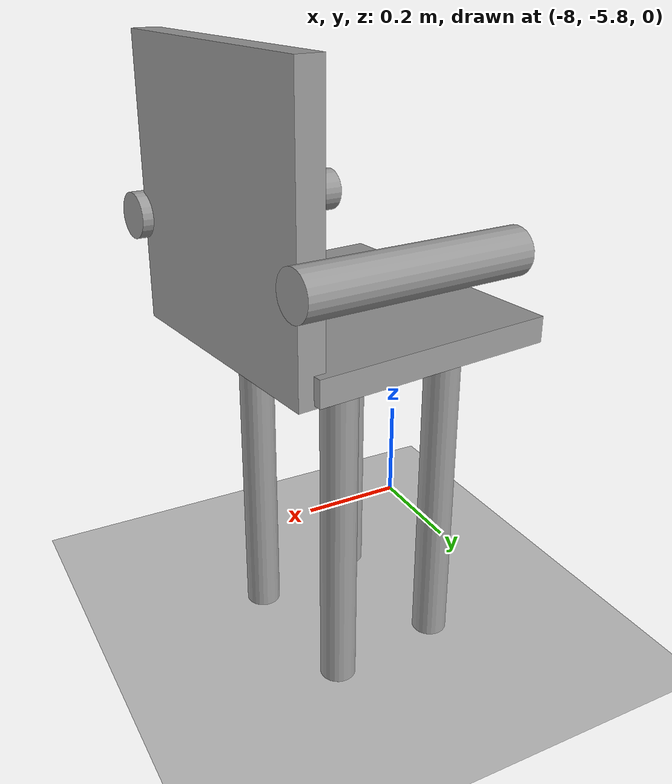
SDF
<sdf version="1.6">
 <world name="default">
  <model name="ground_plane">
   <static>1</static>
   <link name="link">
    <collision name="collision">
     <geometry><plane><normal>0 0 1</normal><size>100 100</size></plane></geometry>
     <surface>
      <contact><collide_bitmask>65535</collide_bitmask></contact>
      <friction><ode><mu>100</mu><mu2>50</mu2></ode></friction>
     </surface>
    </collision>
    <visual name="visual">
     <cast_shadows>0</cast_shadows>
     <geometry><plane><normal>0 0 1</normal><size>100 100</size></plane></geometry>
     <material>
      <script><uri>file://media/materials/scripts/gazebo.material</uri><name>Gazebo/Grey</name></script>
     </material>
    </visual>
   </link>
  </model>
  <model name="chair_clone_1_clone">
   <link name="link_4">
    <inertial>
     <mass>0.00194051</mass>
     <inertia>
      <ixx>5.14044e-05</ixx>
      <ixy>0</ixy>
      <ixz>0</ixz>
      <iyy>5.14044e-05</iyy>
      <iyz>0</iyz>
      <izz>8.34973e-07</izz>
     </inertia>
    </inertial>
    <pose>-0.140129 -0.127166 -0.209129 0 -0 0</pose>
    <visual name="visual">
     <geometry><cylinder><radius>0.0293355</radius><length>0.561516</length></cylinder></geometry>
     <material>
      <lighting>1</lighting>
      <script><uri>file://media/materials/scripts/gazebo.material</uri><name>Gazebo/Grey</name></script>
      <emissive>0 0 0 1</emissive>
     </material>
    </visual>
    <collision name="collision">
     <geometry><cylinder><radius>0.029336</radius><length>0.561516</length></cylinder></geometry>
     <surface>
      <friction>
       <ode><mu>1</mu><mu2>1</mu2><fdir1>0 0 0</fdir1><slip1>0</slip1><slip2>0</slip2></ode>
       <torsional>
        <coefficient>1</coefficient>
        <patch_radius>0</patch_radius>
        <surface_radius>0</surface_radius>
        <use_patch_radius>1</use_patch_radius>
        <ode><slip>0</slip></ode>
       </torsional>
      </friction>
      <bounce><restitution_coefficient>0</restitution_coefficient><threshold>1e+06</threshold></bounce>
      <contact>
       <collide_without_contact>0</collide_without_contact>
       <collide_without_contact_bitmask>1</collide_without_contact_bitmask>
       <collide_bitmask>1</collide_bitmask>
       <ode>
        <soft_cfm>0</soft_cfm>
        <soft_erp>0.2</soft_erp>
        <kp>1e+13</kp>
        <kd>1</kd>
        <max_vel>0.01</max_vel>
        <min_depth>0</min_depth>
       </ode>
       <bullet>
        <split_impulse>1</split_impulse>
        <split_impulse_penetration_threshold>-0.01</split_impulse_penetration_threshold>
        <soft_cfm>0</soft_cfm>
        <soft_erp>0.2</soft_erp>
        <kp>1e+13</kp>
        <kd>1</kd>
       </bullet>
      </contact>
     </surface>
    </collision>
   </link>
   <link name="link_4_clone">
    <inertial>
     <mass>0.00194051</mass>
     <inertia>
      <ixx>5.14044e-05</ixx>
      <ixy>0</ixy>
      <ixz>0</ixz>
      <iyy>5.14044e-05</iyy>
      <iyz>0</iyz>
      <izz>8.34973e-07</izz>
     </inertia>
    </inertial>
    <pose>-0.139565 0.126187 -0.209129 0 -0 0</pose>
    <visual name="visual">
     <geometry><cylinder><radius>0.0293355</radius><length>0.561516</length></cylinder></geometry>
     <material>
      <lighting>1</lighting>
      <script><uri>file://media/materials/scripts/gazebo.material</uri><name>Gazebo/Grey</name></script>
      <shader type="pixel"/>
      <emissive>0 0 0 1</emissive>
     </material>
    </visual>
    <collision name="collision">
     <geometry><cylinder><radius>0.029336</radius><length>0.561516</length></cylinder></geometry>
     <surface>
      <friction>
       <ode><mu>1</mu><mu2>1</mu2><fdir1>0 0 0</fdir1><slip1>0</slip1><slip2>0</slip2></ode>
       <torsional>
        <coefficient>1</coefficient>
        <patch_radius>0</patch_radius>
        <surface_radius>0</surface_radius>
        <use_patch_radius>1</use_patch_radius>
        <ode><slip>0</slip></ode>
       </torsional>
      </friction>
      <bounce><restitution_coefficient>0</restitution_coefficient><threshold>1e+06</threshold></bounce>
      <contact>
       <collide_without_contact>0</collide_without_contact>
       <collide_without_contact_bitmask>1</collide_without_contact_bitmask>
       <collide_bitmask>1</collide_bitmask>
       <ode>
        <soft_cfm>0</soft_cfm>
        <soft_erp>0.2</soft_erp>
        <kp>1e+13</kp>
        <kd>1</kd>
        <max_vel>0.01</max_vel>
        <min_depth>0</min_depth>
       </ode>
       <bullet>
        <split_impulse>1</split_impulse>
        <split_impulse_penetration_threshold>-0.01</split_impulse_penetration_threshold>
        <soft_cfm>0</soft_cfm>
        <soft_erp>0.2</soft_erp>
        <kp>1e+13</kp>
        <kd>1</kd>
       </bullet>
      </contact>
     </surface>
    </collision>
   </link>
   <link name="link_4_clone_0">
    <inertial>
     <mass>0.00194051</mass>
     <inertia>
      <ixx>5.14044e-05</ixx>
      <ixy>0</ixy>
      <ixz>0</ixz>
      <iyy>5.14044e-05</iyy>
      <iyz>0</iyz>
      <izz>8.34973e-07</izz>
     </inertia>
    </inertial>
    <pose>0.062929 0.13105 -0.209129 0 -0 0</pose>
    <visual name="visual">
     <geometry><cylinder><radius>0.0293355</radius><length>0.561516</length></cylinder></geometry>
     <material>
      <lighting>1</lighting>
      <script><uri>file://media/materials/scripts/gazebo.material</uri><name>Gazebo/Grey</name></script>
      <shader type="pixel"/>
      <emissive>0 0 0 1</emissive>
     </material>
    </visual>
    <collision name="collision">
     <geometry><cylinder><radius>0.029336</radius><length>0.561516</length></cylinder></geometry>
     <surface>
      <friction>
       <ode><mu>1</mu><mu2>1</mu2><fdir1>0 0 0</fdir1><slip1>0</slip1><slip2>0</slip2></ode>
       <torsional>
        <coefficient>1</coefficient>
        <patch_radius>0</patch_radius>
        <surface_radius>0</surface_radius>
        <use_patch_radius>1</use_patch_radius>
        <ode><slip>0</slip></ode>
       </torsional>
      </friction>
      <bounce><restitution_coefficient>0</restitution_coefficient><threshold>1e+06</threshold></bounce>
      <contact>
       <collide_without_contact>0</collide_without_contact>
       <collide_without_contact_bitmask>1</collide_without_contact_bitmask>
       <collide_bitmask>1</collide_bitmask>
       <ode>
        <soft_cfm>0</soft_cfm>
        <soft_erp>0.2</soft_erp>
        <kp>1e+13</kp>
        <kd>1</kd>
        <max_vel>0.01</max_vel>
        <min_depth>0</min_depth>
       </ode>
       <bullet>
        <split_impulse>1</split_impulse>
        <split_impulse_penetration_threshold>-0.01</split_impulse_penetration_threshold>
        <soft_cfm>0</soft_cfm>
        <soft_erp>0.2</soft_erp>
        <kp>1e+13</kp>
        <kd>1</kd>
       </bullet>
      </contact>
     </surface>
    </collision>
   </link>
   <link name="link_4_clone_1">
    <inertial>
     <mass>0.00194051</mass>
     <inertia>
      <ixx>5.14044e-05</ixx>
      <ixy>0</ixy>
      <ixz>0</ixz>
      <iyy>5.14044e-05</iyy>
      <iyz>0</iyz>
      <izz>8.34973e-07</izz>
     </inertia>
    </inertial>
    <pose>0.061641 -0.111934 -0.209129 0 -0 0</pose>
    <visual name="visual">
     <geometry><cylinder><radius>0.0293355</radius><length>0.561516</length></cylinder></geometry>
     <material>
      <lighting>1</lighting>
      <script><uri>file://media/materials/scripts/gazebo.material</uri><name>Gazebo/Grey</name></script>
      <shader type="pixel"/>
      <emissive>0 0 0 1</emissive>
     </material>
    </visual>
    <collision name="collision">
     <geometry><cylinder><radius>0.029336</radius><length>0.561516</length></cylinder></geometry>
     <surface>
      <friction>
       <ode><mu>1</mu><mu2>1</mu2><fdir1>0 0 0</fdir1><slip1>0</slip1><slip2>0</slip2></ode>
       <torsional>
        <coefficient>1</coefficient>
        <patch_radius>0</patch_radius>
        <surface_radius>0</surface_radius>
        <use_patch_radius>1</use_patch_radius>
        <ode><slip>0</slip></ode>
       </torsional>
      </friction>
      <bounce><restitution_coefficient>0</restitution_coefficient><threshold>1e+06</threshold></bounce>
      <contact>
       <collide_without_contact>0</collide_without_contact>
       <collide_without_contact_bitmask>1</collide_without_contact_bitmask>
       <collide_bitmask>1</collide_bitmask>
       <ode>
        <soft_cfm>0</soft_cfm>
        <soft_erp>0.2</soft_erp>
        <kp>1e+13</kp>
        <kd>1</kd>
        <max_vel>0.01</max_vel>
        <min_depth>0</min_depth>
       </ode>
       <bullet>
        <split_impulse>1</split_impulse>
        <split_impulse_penetration_threshold>-0.01</split_impulse_penetration_threshold>
        <soft_cfm>0</soft_cfm>
        <soft_erp>0.2</soft_erp>
        <kp>1e+13</kp>
        <kd>1</kd>
       </bullet>
      </contact>
     </surface>
    </collision>
   </link>
   <link name="link_5">
    <inertial>
     <mass>0.00816884</mass>
     <inertia>
      <ixx>0.00015002</ixx>
      <ixy>0</ixy>
      <ixz>0</ixz>
      <iyy>0.000115328</iyy>
      <iyz>0</iyz>
      <izz>0.000262862</izz>
     </inertia>
    </inertial>
    <pose>-0.041662 -0.005028 0.089077 0 -0 0</pose>
    <visual name="visual">
     <geometry><box><size>0.409378 0.467496 0.042729</size></box></geometry>
     <material>
      <lighting>1</lighting>
      <script><uri>file://media/materials/scripts/gazebo.material</uri><name>Gazebo/Grey</name></script>
      <emissive>0 0 0 1</emissive>
     </material>
    </visual>
    <collision name="collision">
     <geometry><box><size>0.409378 0.467496 0.042729</size></box></geometry>
     <surface>
      <friction>
       <ode><mu>1</mu><mu2>1</mu2><fdir1>0 0 0</fdir1><slip1>0</slip1><slip2>0</slip2></ode>
       <torsional>
        <coefficient>1</coefficient>
        <patch_radius>0</patch_radius>
        <surface_radius>0</surface_radius>
        <use_patch_radius>1</use_patch_radius>
        <ode><slip>0</slip></ode>
       </torsional>
      </friction>
      <bounce><restitution_coefficient>0</restitution_coefficient><threshold>1e+06</threshold></bounce>
      <contact>
       <collide_without_contact>0</collide_without_contact>
       <collide_without_contact_bitmask>1</collide_without_contact_bitmask>
       <collide_bitmask>1</collide_bitmask>
       <ode>
        <soft_cfm>0</soft_cfm>
        <soft_erp>0.2</soft_erp>
        <kp>1e+13</kp>
        <kd>1</kd>
        <max_vel>0.01</max_vel>
        <min_depth>0</min_depth>
       </ode>
       <bullet>
        <split_impulse>1</split_impulse>
        <split_impulse_penetration_threshold>-0.01</split_impulse_penetration_threshold>
        <soft_cfm>0</soft_cfm>
        <soft_erp>0.2</soft_erp>
        <kp>1e+13</kp>
        <kd>1</kd>
       </bullet>
      </contact>
     </surface>
    </collision>
   </link>
   <link name="link_6">
    <inertial>
     <mass>0.00855687</mass>
     <inertia>
      <ixx>0.000285159</ixx>
      <ixy>0</ixy>
      <ixz>0</ixz>
      <iyy>0.000146983</iyy>
      <iyz>0</iyz>
      <izz>0.000140925</izz>
     </inertia>
    </inertial>
    <pose>0.165697 -0.006458 0.287866 0 -0 0</pose>
    <visual name="visual">
     <geometry><box><size>0.0439 0.442383 0.451884</size></box></geometry>
     <material>
      <lighting>1</lighting>
      <script><uri>file://media/materials/scripts/gazebo.material</uri><name>Gazebo/Grey</name></script>
      <emissive>0 0 0 1</emissive>
     </material>
    </visual>
    <collision name="collision">
     <geometry><box><size>0.0439 0.442383 0.451884</size></box></geometry>
     <surface>
      <friction>
       <ode><mu>1</mu><mu2>1</mu2><fdir1>0 0 0</fdir1><slip1>0</slip1><slip2>0</slip2></ode>
       <torsional>
        <coefficient>1</coefficient>
        <patch_radius>0</patch_radius>
        <surface_radius>0</surface_radius>
        <use_patch_radius>1</use_patch_radius>
        <ode><slip>0</slip></ode>
       </torsional>
      </friction>
      <bounce><restitution_coefficient>0</restitution_coefficient><threshold>1e+06</threshold></bounce>
      <contact>
       <collide_without_contact>0</collide_without_contact>
       <collide_without_contact_bitmask>1</collide_without_contact_bitmask>
       <collide_bitmask>1</collide_bitmask>
       <ode>
        <soft_cfm>0</soft_cfm>
        <soft_erp>0.2</soft_erp>
        <kp>1e+13</kp>
        <kd>1</kd>
        <max_vel>0.01</max_vel>
        <min_depth>0</min_depth>
       </ode>
       <bullet>
        <split_impulse>1</split_impulse>
        <split_impulse_penetration_threshold>-0.01</split_impulse_penetration_threshold>
        <soft_cfm>0</soft_cfm>
        <soft_erp>0.2</soft_erp>
        <kp>1e+13</kp>
        <kd>1</kd>
       </bullet>
      </contact>
     </surface>
    </collision>
   </link>
   <link name="link_7">
    <inertial>
     <mass>0.00209129</mass>
     <inertia>
      <ixx>2.57536e-05</ixx>
      <ixy>0</ixy>
      <ixz>0</ixz>
      <iyy>2.57536e-05</iyy>
      <iyz>0</iyz>
      <izz>1.44551e-06</izz>
     </inertia>
    </inertial>
    <pose>0.0147 0.228665 0.230372 0 1.55081 0</pose>
    <visual name="visual">
     <geometry><cylinder><radius>0.0371808</radius><length>0.378984</length></cylinder></geometry>
     <material>
      <lighting>1</lighting>
      <script><uri>file://media/materials/scripts/gazebo.material</uri><name>Gazebo/Grey</name></script>
      <emissive>0 0 0 1</emissive>
     </material>
    </visual>
    <collision name="collision">
     <geometry><cylinder><radius>0.037181</radius><length>0.378984</length></cylinder></geometry>
     <surface>
      <friction>
       <ode><mu>1</mu><mu2>1</mu2><fdir1>0 0 0</fdir1><slip1>0</slip1><slip2>0</slip2></ode>
       <torsional>
        <coefficient>1</coefficient>
        <patch_radius>0</patch_radius>
        <surface_radius>0</surface_radius>
        <use_patch_radius>1</use_patch_radius>
        <ode><slip>0</slip></ode>
       </torsional>
      </friction>
      <bounce><restitution_coefficient>0</restitution_coefficient><threshold>1e+06</threshold></bounce>
      <contact>
       <collide_without_contact>0</collide_without_contact>
       <collide_without_contact_bitmask>1</collide_without_contact_bitmask>
       <collide_bitmask>1</collide_bitmask>
       <ode>
        <soft_cfm>0</soft_cfm>
        <soft_erp>0.2</soft_erp>
        <kp>1e+13</kp>
        <kd>1</kd>
        <max_vel>0.01</max_vel>
        <min_depth>0</min_depth>
       </ode>
       <bullet>
        <split_impulse>1</split_impulse>
        <split_impulse_penetration_threshold>-0.01</split_impulse_penetration_threshold>
        <soft_cfm>0</soft_cfm>
        <soft_erp>0.2</soft_erp>
        <kp>1e+13</kp>
        <kd>1</kd>
       </bullet>
      </contact>
     </surface>
    </collision>
   </link>
   <link name="link_7_clone">
    <inertial>
     <mass>0.00209129</mass>
     <inertia>
      <ixx>2.57536e-05</ixx>
      <ixy>0</ixy>
      <ixz>0</ixz>
      <iyy>2.57536e-05</iyy>
      <iyz>0</iyz>
      <izz>1.44551e-06</izz>
     </inertia>
    </inertial>
    <pose>0.01639 -0.235319 0.229201 0 1.55081 0</pose>
    <visual name="visual">
     <geometry><cylinder><radius>0.0371808</radius><length>0.378984</length></cylinder></geometry>
     <material>
      <lighting>1</lighting>
      <script><uri>file://media/materials/scripts/gazebo.material</uri><name>Gazebo/Grey</name></script>
      <shader type="pixel"/>
      <emissive>0 0 0 1</emissive>
     </material>
    </visual>
    <collision name="collision">
     <geometry><cylinder><radius>0.037181</radius><length>0.378984</length></cylinder></geometry>
     <surface>
      <friction>
       <ode><mu>1</mu><mu2>1</mu2><fdir1>0 0 0</fdir1><slip1>0</slip1><slip2>0</slip2></ode>
       <torsional>
        <coefficient>1</coefficient>
        <patch_radius>0</patch_radius>
        <surface_radius>0</surface_radius>
        <use_patch_radius>1</use_patch_radius>
        <ode><slip>0</slip></ode>
       </torsional>
      </friction>
      <bounce><restitution_coefficient>0</restitution_coefficient><threshold>1e+06</threshold></bounce>
      <contact>
       <collide_without_contact>0</collide_without_contact>
       <collide_without_contact_bitmask>1</collide_without_contact_bitmask>
       <collide_bitmask>1</collide_bitmask>
       <ode>
        <soft_cfm>0</soft_cfm>
        <soft_erp>0.2</soft_erp>
        <kp>1e+13</kp>
        <kd>1</kd>
        <max_vel>0.01</max_vel>
        <min_depth>0</min_depth>
       </ode>
       <bullet>
        <split_impulse>1</split_impulse>
        <split_impulse_penetration_threshold>-0.01</split_impulse_penetration_threshold>
        <soft_cfm>0</soft_cfm>
        <soft_erp>0.2</soft_erp>
        <kp>1e+13</kp>
        <kd>1</kd>
       </bullet>
      </contact>
     </surface>
    </collision>
   </link>
   <joint name="link_5_JOINT_2" type="fixed">
    <parent>link_5</parent>
    <child>link_4_clone_1</child>
    <physics>
     <ode><limit><cfm>0</cfm><erp>0.2</erp></limit><suspension><cfm>0</cfm><erp>0.2</erp></suspension></ode>
    </physics>
   </joint>
   <joint name="link_5_JOINT_3" type="fixed">
    <parent>link_5</parent>
    <child>link_4</child>
    <physics>
     <ode><limit><cfm>0</cfm><erp>0.2</erp></limit><suspension><cfm>0</cfm><erp>0.2</erp></suspension></ode>
    </physics>
   </joint>
   <joint name="link_5_JOINT_4" type="fixed">
    <parent>link_5</parent>
    <child>link_4_clone_0</child>
    <physics>
     <ode><limit><cfm>0</cfm><erp>0.2</erp></limit><suspension><cfm>0</cfm><erp>0.2</erp></suspension></ode>
    </physics>
   </joint>
   <joint name="link_5_JOINT_5" type="fixed">
    <parent>link_5</parent>
    <child>link_4_clone</child>
    <physics>
     <ode><limit><cfm>0</cfm><erp>0.2</erp></limit><suspension><cfm>0</cfm><erp>0.2</erp></suspension></ode>
    </physics>
   </joint>
   <joint name="link_5_JOINT_6" type="fixed">
    <parent>link_5</parent>
    <child>link_6</child>
    <physics>
     <ode><limit><cfm>0</cfm><erp>0.2</erp></limit><suspension><cfm>0</cfm><erp>0.2</erp></suspension></ode>
    </physics>
   </joint>
   <joint name="link_5_JOINT_7" type="fixed">
    <parent>link_5</parent>
    <child>link_7</child>
    <physics>
     <ode><limit><cfm>0</cfm><erp>0.2</erp></limit><suspension><cfm>0</cfm><erp>0.2</erp></suspension></ode>
    </physics>
   </joint>
   <joint name="link_5_JOINT_8" type="fixed">
    <parent>link_5</parent>
    <child>link_7_clone</child>
    <physics>
     <ode><limit><cfm>0</cfm><erp>0.2</erp></limit><suspension><cfm>0</cfm><erp>0.2</erp></suspension></ode>
    </physics>
   </joint>
   <static>0</static>
   <pose>-7.66627 -5.47865 0.489878 0 3.3e-05 0.11979</pose>
  </model>
 </world>
</sdf>
